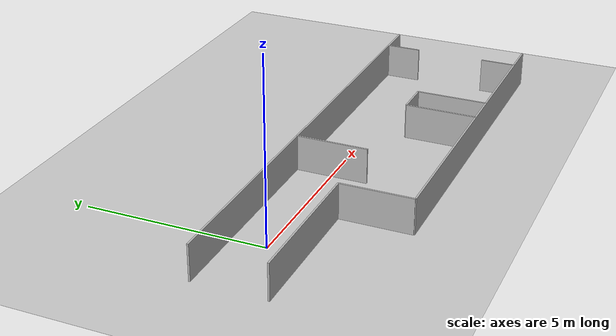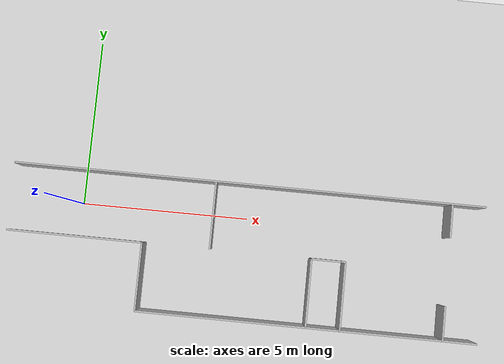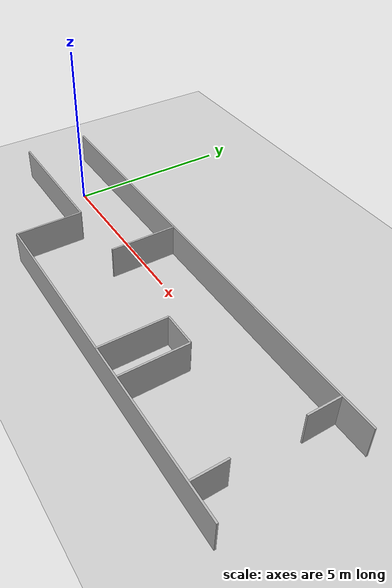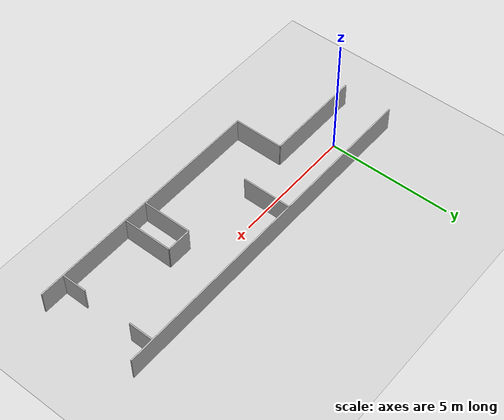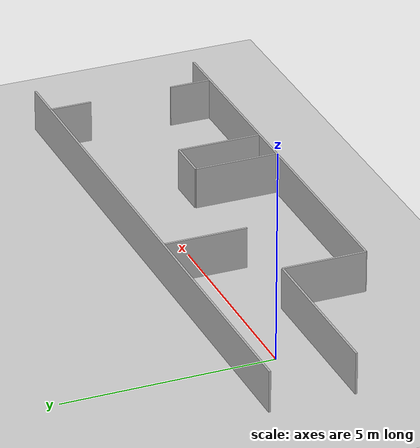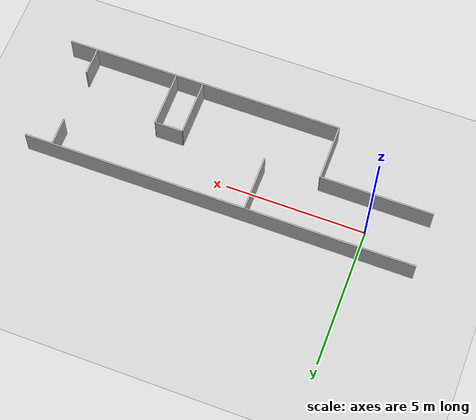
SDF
<?xml version="1.0" ?>
<sdf version="1.8">
  <world name="maze_world">
    <physics name="1ms" type="ignored">
      <max_step_size>0.001</max_step_size>
      <real_time_factor>1.0</real_time_factor>
    </physics>

    <plugin filename="gz-sim-physics-system" name="gz::sim::systems::Physics" />
    <plugin filename="gz-sim-user-commands-system" name="gz::sim::systems::UserCommands" />
    <plugin filename="gz-sim-scene-broadcaster-system" name="gz::sim::systems::SceneBroadcaster" />

    <plugin filename="gz-sim-sensors-system" name="gz::sim::systems::Sensors">
      <render_engine>ogre</render_engine>
    </plugin>

    <scene>
      <ambient>0.8 0.8 0.8 1</ambient> <background>0.8 0.8 0.8 1</background>
      <grid>true</grid>
    </scene>

    <model name="ground_plane">
      <static>true</static>
      <link name="link">
        <collision name="collision">
          <geometry><plane><normal>0 0 1</normal><size>100 100</size></plane></geometry>
        </collision>
        <visual name="visual">
          <geometry><plane><normal>0 0 1</normal><size>100 100</size></plane></geometry>
          <material><ambient>0.8 0.8 0.8 1</ambient><diffuse>0.8 0.8 0.8 1</diffuse></material>
        </visual>
      </link>
    </model>

    <model name="box_maze">
      <static>true</static>
      <link name="walls">

        <visual name="w2_vis"><pose>5 1 0.5 0 0 1.5708</pose><geometry><box><size>0.05 14 1</size></box></geometry></visual>
        <collision name="w2_col"><pose>5 1 0.5 0 0 1.5708</pose><geometry><box><size>0.05 14 1</size></box></geometry></collision>

        <visual name="w3_vis"><pose>0 -1 0.5 0 0 1.5708</pose><geometry><box><size>0.05 4 1</size></box></geometry></visual>
        <collision name="w3_col"><pose>0 -1 0.5 0 0 1.5708</pose><geometry><box><size>0.05 4 1</size></box></geometry></collision>

        <visual name="w4_vis"><pose>4 0 0.5 0 0 0</pose><geometry><box><size>0.05 2 1</size></box></geometry></visual>
        <collision name="w4_col"><pose>4 0 0.5 0 0 0</pose><geometry><box><size>0.05 2 1</size></box></geometry></collision>

        <visual name="w5_vis"><pose>2 -2 0.5 0 0 0</pose><geometry><box><size>0.05 2 1</size></box></geometry></visual>
        <collision name="w5_col"><pose>2 -2 0.5 0 0 0</pose><geometry><box><size>0.05 2 1</size></box></geometry></collision>

        <visual name="w6_vis"><pose>7 -3 0.5 0 0 1.5708</pose><geometry><box><size>0.05 10 1</size></box></geometry></visual>
        <collision name="w6_col"><pose>7 -3 0.5 0 0 1.5708</pose><geometry><box><size>0.05 10 1</size></box></geometry></collision>

        <visual name="w7_vis"><pose>7 -2 0.5 0 0 0</pose><geometry><box><size>0.05 2 1</size></box></geometry></visual>
        <collision name="w7_col"><pose>7 -2 0.5 0 0 0</pose><geometry><box><size>0.05 2 1</size></box></geometry></collision>

        <visual name="w8_vis"><pose>7.5 -1 0.5 0 0 1.5708</pose><geometry><box><size>0.05 1 1</size></box></geometry></visual>
        <collision name="w8_col"><pose>7.5 -1 0.5 0 0 1.5708</pose><geometry><box><size>0.05 1 1</size></box></geometry></collision>

        <visual name="w9_vis"><pose>8 -2 0.5 0 0 0</pose><geometry><box><size>0.05 2 1</size></box></geometry></visual>
        <collision name="w9_col"><pose>8 -2 0.5 0 0 0</pose><geometry><box><size>0.05 2 1</size></box></geometry></collision>

        <visual name="w10_vis"><pose>11 0.5 0.5 0 0 0</pose><geometry><box><size>0.05 1 1</size></box></geometry></visual>
        <collision name="w10_col"><pose>11 0.5 0.5 0 0 0</pose><geometry><box><size>0.05 1 1</size></box></geometry></collision>

        <visual name="w11_vis"><pose>11 -2.5 0.5 0 0 0</pose><geometry><box><size>0.05 1 1</size></box></geometry></visual>
        <collision name="w11_col"><pose>11 -2.5 0.5 0 0 0</pose><geometry><box><size>0.05 1 1</size></box></geometry></collision>

      </link>
    </model>
  </world>
</sdf>
